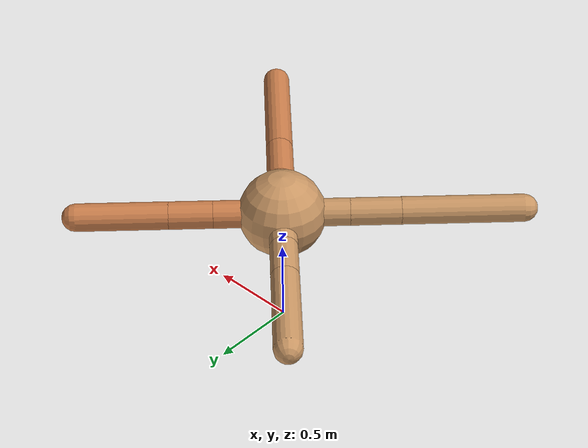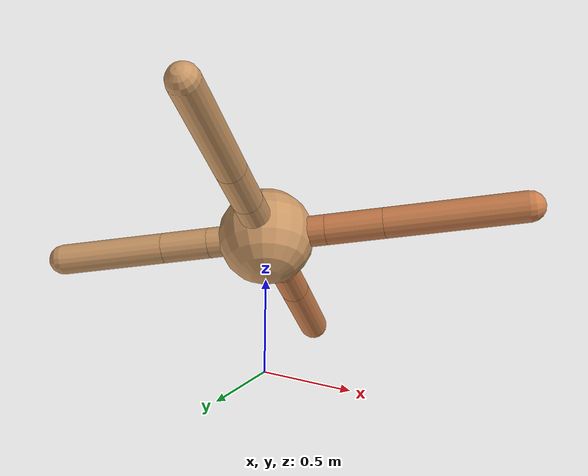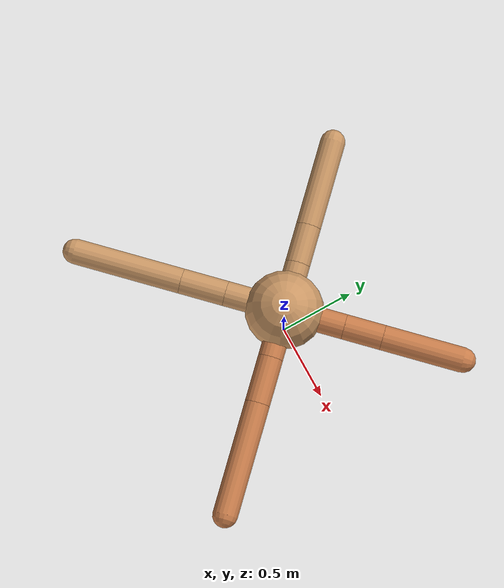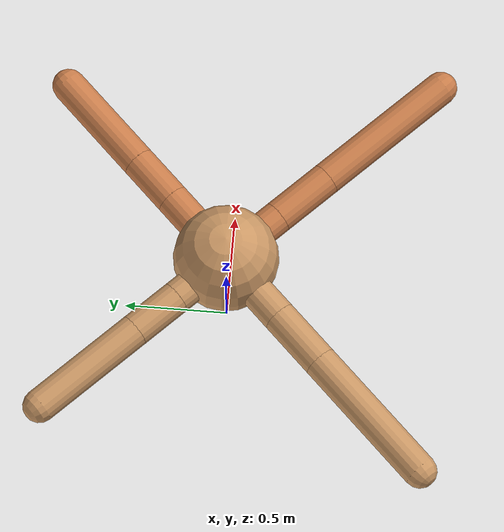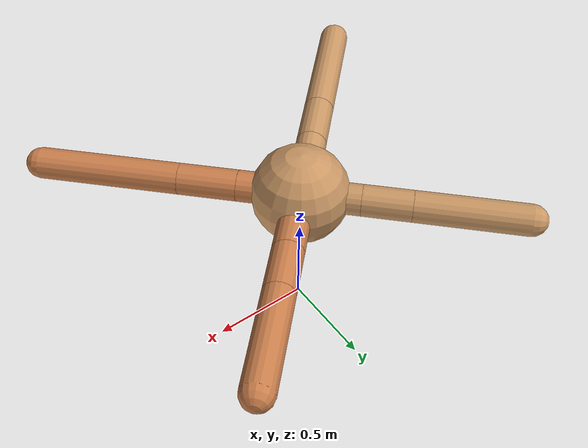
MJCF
<mujoco model="ant">
  <compiler angle="degree" coordinate="local" inertiafromgeom="true" />
  <option integrator="RK4" timestep="0.01" />
  <custom>
    <numeric data="0.0 0.0 0.55 1.0 0.0 0.0 0.0 0.0 1.0 0.0 -1.0 0.0 -1.0 0.0 1.0" name="init_qpos" />
  </custom>
  <default>
    <joint armature="1" damping="1" limited="true" />
    <geom conaffinity="0" condim="3" density="5.0" friction="1.5 0.1 0.1" margin="0.01" rgba="0.8 0.6 0.4 1" />
  </default>
  <worldbody>
    <body name="torso" pos="0 0 0.75">
      <geom name="torso_geom" pos="0 0 0" size="0.25" type="sphere" />

      <body name="front_left_leg" pos="0 0 0">
        <geom fromto="0.0 0.0 0.0 0.27628482497229107 0.27628482497229107 0.0" name="aux_1_geom" size="0.08" type="capsule" rgba=".8 .5 .3 1" />
        <body name="aux_1" pos="0.27628482497229107 0.27628482497229107 0.0">
          <joint axis="0 0 1" name="hip_1" pos="0.0 0.0 0.0" range="-40 40" type="hinge" />
          <geom fromto="0.0 0.0 0.0 0.17710068802329101 0.17710068802329101 0.0" name="left_leg_geom" size="0.08" type="capsule" rgba=".8 .5 .3 1" />
          <body pos="0.17710068802329101 0.17710068802329101 0.0" name="front_left_foot">
            <joint axis="-1 1 0" name="ankle_1" pos="0.0 0.0 0.0" range="30 100" type="hinge" />
            <geom fromto="0.0 0.0 0.0 0.3691776490843516 0.3691776490843516 0.0" name="left_ankle_geom" size="0.08" type="capsule" rgba=".8 .5 .3 1" />
          </body>
        </body>
      </body>
      <body name="front_right_leg" pos="0 0 0">
        <geom fromto="0.0 0.0 0.0 -0.21544728864404386 0.21544728864404386 0.0" name="aux_2_geom" size="0.08" type="capsule" />
        <body name="aux_2" pos="-0.21544728864404386 0.21544728864404386 0.0">
          <joint axis="0 0 1" name="hip_2" pos="0.0 0.0 0.0" range="-40 40" type="hinge" />
          <geom fromto="0.0 0.0 0.0 -0.17749904600364325 0.17749904600364325 0.0" name="right_leg_geom" size="0.08" type="capsule" />
          <body pos="-0.17749904600364325 0.17749904600364325 0.0" name="front_right_foot">
            <joint axis="1 1 0" name="ankle_2" pos="0.0 0.0 0.0" range="-100 -30" type="hinge" />
            <geom fromto="0.0 0.0 0.0 -0.40281838344919285 0.40281838344919285 0.0" name="right_ankle_geom" size="0.08" type="capsule" />
          </body>
        </body>
      </body>
      <body name="left_back_leg" pos="0 0 0">
        <geom fromto="0.0 0.0 0.0 -0.2705322787807995 -0.2705322787807995 0.0" name="aux_3_geom" size="0.08" type="capsule" />
        <body name="aux_3" pos="-0.2705322787807995 -0.2705322787807995 0.0">
          <joint axis="0 0 1" name="hip_3" pos="0.0 0.0 0.0" range="-40 40" type="hinge" />
          <geom fromto="0.0 0.0 0.0 -0.20537893992925157 -0.20537893992925157 0.0" name="back_leg_geom" size="0.08" type="capsule" />
          <body pos="-0.20537893992925157 -0.20537893992925157 0.0" name="left_back_foot">
            <joint axis="-1 1 0" name="ankle_3" pos="0.0 0.0 0.0" range="-100 -30" type="hinge" />
            <geom fromto="0.0 0.0 0.0 -0.49323214758801354 -0.49323214758801354 0.0" name="third_ankle_geom" size="0.08" type="capsule" />
          </body>
        </body>
      </body>
      <body name="right_back_leg" pos="0 0 0">
        <geom fromto="0.0 0.0 0.0 0.22499208898458864 -0.22499208898458864 0.0" name="aux_4_geom" size="0.08" type="capsule" rgba=".8 .5 .3 1" />
        <body name="aux_4" pos="0.22499208898458864 -0.22499208898458864 0.0">
          <joint axis="0 0 1" name="hip_4" pos="0.0 0.0 0.0" range="-40 40" type="hinge" />
          <geom fromto="0.0 0.0 0.0 0.2121529527114996 -0.2121529527114996 0.0" name="rightback_leg_geom" size="0.08" type="capsule" rgba=".8 .5 .3 1" />
          <body pos="0.2121529527114996 -0.2121529527114996 0.0" name="right_back_foot">
            <joint axis="1 1 0" name="ankle_4" pos="0.0 0.0 0.0" range="30 100" type="hinge" />
            <geom fromto="0.0 0.0 0.0 0.5131369687651565 -0.5131369687651565 0.0" name="fourth_ankle_geom" size="0.08" type="capsule" rgba=".8 .5 .3 1" />
          </body>
        </body>
      </body>
    </body>
  </worldbody>
  <actuator>
    <motor ctrllimited="true" ctrlrange="-1.0 1.0" joint="hip_4" gear="150" />
    <motor ctrllimited="true" ctrlrange="-1.0 1.0" joint="ankle_4" gear="150" />
    <motor ctrllimited="true" ctrlrange="-1.0 1.0" joint="hip_1" gear="150" />
    <motor ctrllimited="true" ctrlrange="-1.0 1.0" joint="ankle_1" gear="150" />
    <motor ctrllimited="true" ctrlrange="-1.0 1.0" joint="hip_2" gear="150" />
    <motor ctrllimited="true" ctrlrange="-1.0 1.0" joint="ankle_2" gear="150" />
    <motor ctrllimited="true" ctrlrange="-1.0 1.0" joint="hip_3" gear="150" />
    <motor ctrllimited="true" ctrlrange="-1.0 1.0" joint="ankle_3" gear="150" />
  </actuator>
</mujoco>
